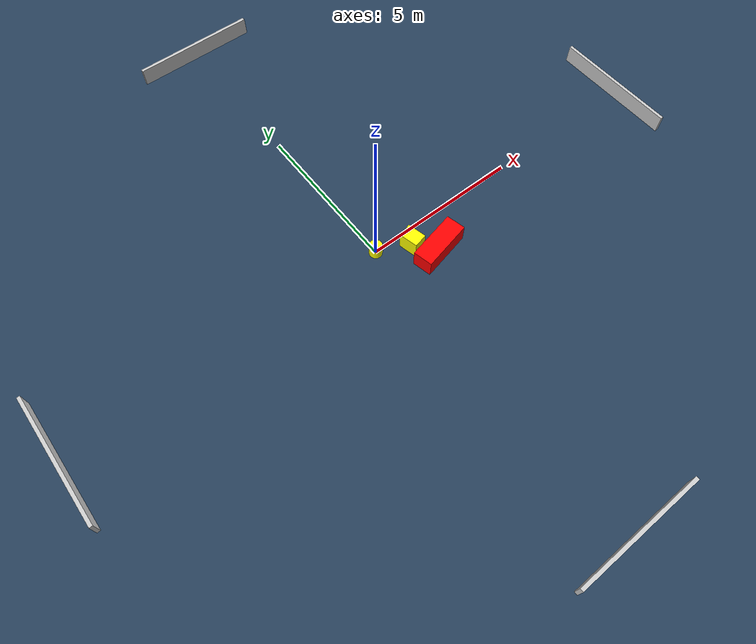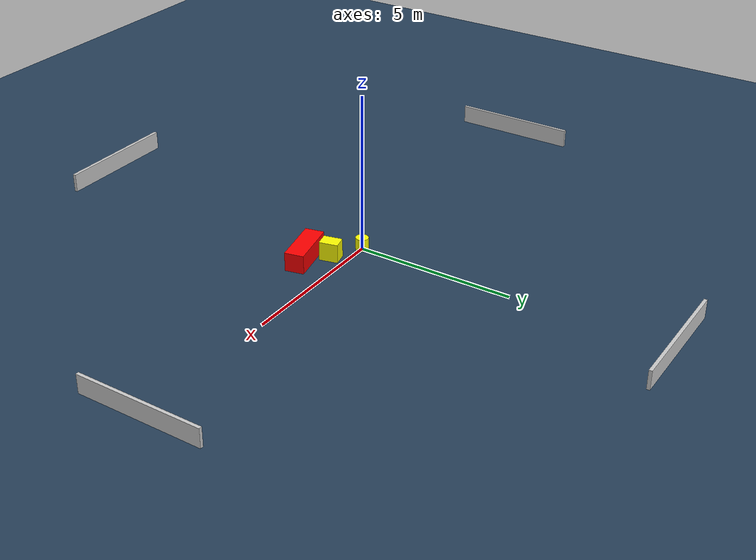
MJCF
<?xml version="1.0" ?>
<mujoco model="generated_environment">
  <option timestep="0.01" integrator="RK4" cone="elliptic"/>
  <default>
    <geom density="1"/>
  </default>
  <asset>
    <texture builtin="gradient" height="3072" name="skybox" rgb1="0.3 0.5 0.7" rgb2="0 0 0" type="skybox" width="512"/>
    <texture builtin="checker" height="300" name="groundplane" rgb1="0.2 0.3 0.4" rgb2="0.1 0.2 0.3" type="2d" width="300"/>
    <material name="groundplane" reflectance="0.2" texrepeat="5 5" texture="groundplane"/>
  </asset>
  <worldbody>
    <light dir="0 0 -1" directional="true" pos="0 0 1.5"/>
    <geom condim="3" friction="0.5 0.005 0.001" material="groundplane" name="floor" pos="0 0 0" size="0 0 0.05" type="plane"/>
    <body name="walls">
      <geom name="wall_1" condim="4" pos="-10.0 0.0 0.3" rgba="0.800000011920929 0.800000011920929 0.800000011920929 1.0" size="0.05 2.0 0.3" type="box"/>
      <geom name="wall_2" condim="4" pos="10.0 0.0 0.3" rgba="0.800000011920929 0.800000011920929 0.800000011920929 1.0" size="0.05 2.0 0.3" type="box"/>
      <geom name="wall_3" condim="4" pos="0.0 -10.0 0.3" rgba="0.800000011920929 0.800000011920929 0.800000011920929 1.0" size="2.0 0.05 0.3" type="box"/>
      <geom name="wall_4" condim="4" pos="0.0 10.0 0.3" rgba="0.800000011920929 0.800000011920929 0.800000011920929 1.0" size="2.0 0.05 0.3" type="box"/>
    </body>
    <body name="robot">
      <joint name="joint_x" type="slide" pos="0 0 0" axis="1 0 0"/>
      <joint name="joint_y" type="slide" pos="0 0 0" axis="0 1 0"/>
      <geom name="robot" type="cylinder" pos="0.0 0.0 0.2" size="0.2 0.2 0.0" mass="5.0" friction="1.0 0.005 0.0001" condim="4" rgba="1.0 1.0 0.0 1.0"/>
    </body>
    <body name="obstacle_1_movable">
      <geom name="obstacle_1_movable" condim="4" pos="0.9759802515815156 -0.4807024123448841 0.3" euler="0 0 103.16396761879763" friction="0.0 0.005 0.001" rgba="1.0 1.0 0.0 1.0" size="0.29405952945169067 0.21677798078405158 0.3" type="box" mass="0.1"/>
      <joint type="free"/>
    </body>
    <body name="obstacle_2_static">
      <geom name="obstacle_2_static" condim="4" pos="1.480622424840461 -1.0789477059558927 0.3" euler="0 0 102.45103484454476" friction="0.0 0.005 0.001" rgba="1.0 0.0 0.0 1.0" size="0.3014696612772723 0.7966828546304641 0.3" type="box"/>
    </body>
  </worldbody>
  <actuator>
    <motor name="actuator_x" joint="joint_x" gear="1" ctrlrange="-1 1"/>
    <motor name="actuator_y" joint="joint_y" gear="1" ctrlrange="-1 1"/>
  </actuator>
</mujoco>
